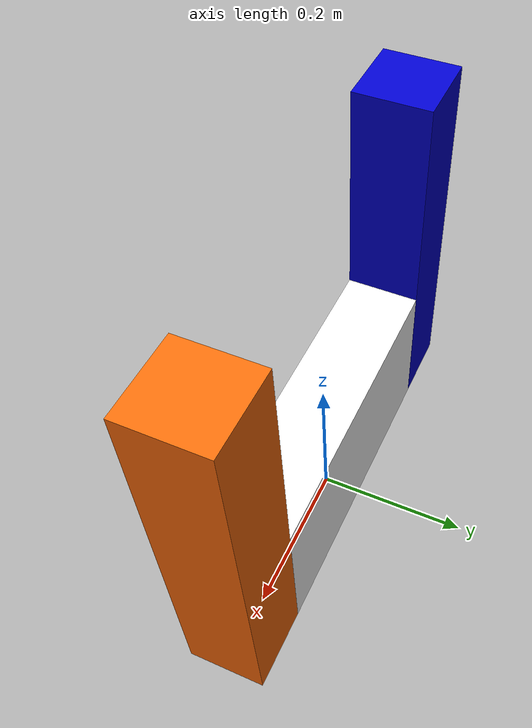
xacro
<?xml version="1.0"?>
<robot xmlns:xacro="http://www.ros.org/wiki/xacro" name="hk1d">

    <!-- Enable setting arguments from the launch file -->
    <xacro:arg name="isReal_Slave" default="false" />
    <xacro:arg name="isReal_Master" default="false" />
    <xacro:arg name="control_freq" default="200" />
    <xacro:arg name="Ts" default="0.005" />

    <!-- Import iiwa urdf file -->
    <xacro:include filename="$(find hk1d_description)/urdf/hk1d.urdf" />

    <!-- Import iiwa ros2_control description -->
    <xacro:include filename="$(find hk1d_description)/ros2_control/hk1d.r2c_hardware.xacro" />

    <xacro:hk1d_ros2_control name="HK1D_HW_Interface"  isReal_Slave="$(arg isReal_Slave)" isReal_Master="$(arg isReal_Master)" control_freq="$(arg control_freq)" Ts="$(arg Ts)"/>
</robot>

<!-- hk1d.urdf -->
<robot name="hk1d">
 <!-- Import your models -->
  <material name="RRBOT/black">
    <color rgba="0.0 0.0 0.0 1.0"/>
  </material>
  <material name="RRBOT/blue">
    <color rgba="0.0 0.0 0.8 1.0"/>
  </material>
  <material name="RRBOT/green">
    <color rgba="0.0 0.8 0.0 1.0"/>
  </material>
  <material name="RRBOT/grey">
    <color rgba="0.2 0.2 0.2 1.0"/>
  </material>
  <material name="RRBOT/orange">
    <color rgba="1.0 0.423529411765 0.0392156862745 1.0"/>
  </material>
  <material name="RRBOT/brown">
    <color rgba="0.870588235294 0.811764705882 0.764705882353 1.0"/>
  </material>
  <material name="RRBOT/red">
    <color rgba="0.8 0.0 0.0 1.0"/>
  </material>
  <material name="RRBOT/white">
    <color rgba="1.0 1.0 1.0 1.0"/>
  </material>

 <!-- //////////////////// links //////////////////////-->
    <link name="world"/>
  <gazebo reference="world">
    <static>true</static>
  </gazebo>

  <joint name="hk1d_fixed" type="fixed">
    <origin rpy="0 0 0" xyz="0 0 0"/>
    <parent link="world"/>
    <child link="hk1d_base"/>
  </joint>

    <link name="hk1d_base">
        <visual>
            <origin rpy="0 0 0" xyz="0 0 0.1"/>
            <geometry>
                <box size="0.4 0.1 0.2"/>
            </geometry>
            <material name="RRBOT/white"/>
        </visual>
    </link>

    <link name="hk1d_link_1">
        <visual>
            <origin rpy="0 0 0" xyz="-0.25 0 0.25"/>
            <geometry>
                <box size="0.1 0.1 0.5"/>
            </geometry>
            <material name="RRBOT/blue"/>
        </visual>
    </link>

    <link name="hk1d_link_2">
        <visual>
            <origin rpy="0 0 0" xyz="0.25 0 0.25"/>
            <geometry>
                <box size="0.1 0.1 0.5"/>
            </geometry>
            <material name="RRBOT/orange"/>
        </visual>
    </link>

    <joint name="operator_joint_1" type="revolute">
        <origin rpy="0 0 0" xyz="0 0 0"/>
        <parent link="hk1d_base"/>
        <child link="hk1d_link_1"/>
        <axis xyz="1 0 0"/>
        <limit effort="120" velocity="50.0" lower="-20" upper="20" />
    </joint>

    <joint name="remote_joint_1" type="revolute">
        <origin rpy="0 0 0" xyz="0 0 0"/>
        <parent link="hk1d_base"/>
        <child link="hk1d_link_2"/>
        <axis xyz="1 0 0"/>
        <limit effort="120" velocity="50.0" lower="-20" upper="20" />
    </joint>

</robot>
